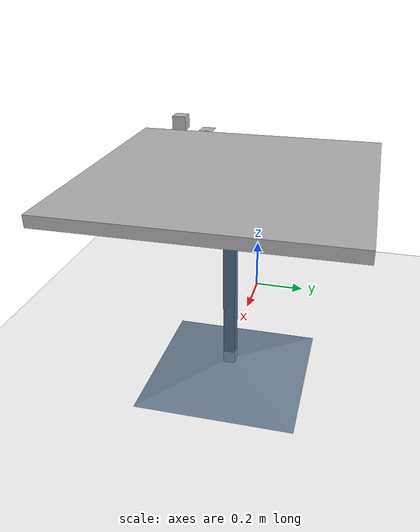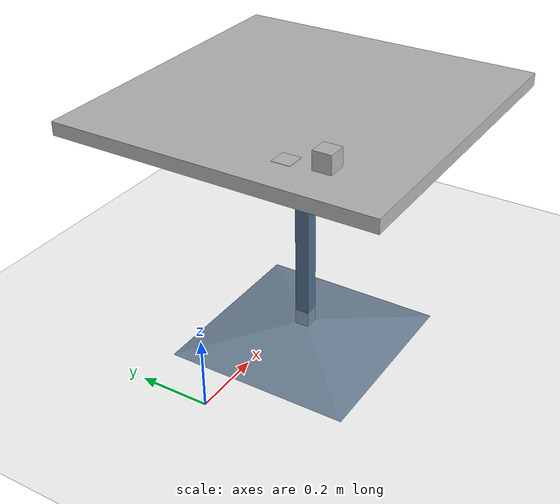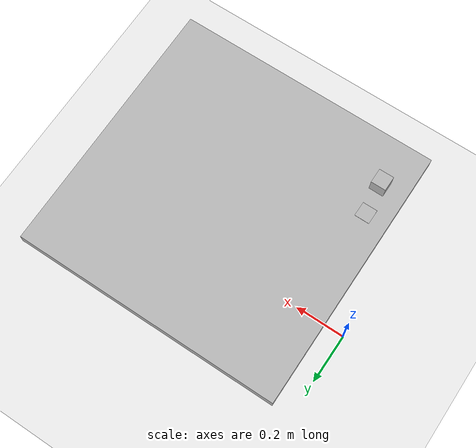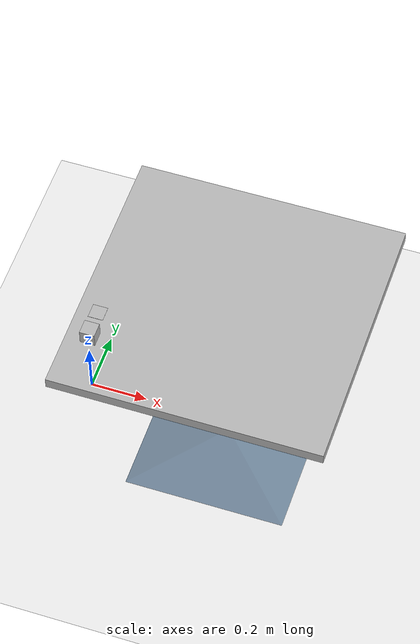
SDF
<?xml version="1.0" ?>
<sdf version="1.5">
  <world name="pepper_table_cube">
    <include>
      <uri>model://sun</uri>
    </include>
    <include>
      <uri>model://ground_plane</uri>
    </include>
    <include>
      <name>table</name>
      <uri>model://table</uri>
      <pose>0.5 0 0 0 0 0</pose>
    </include>
    <include>
      <uri>model://cube</uri>
      <pose>0.13 -0.28 0.73 0 0 0</pose>
    </include>
    <include>
      <uri>model://target</uri>
      <pose>0.12 -0.18 0.7055 0 0 0</pose>
    </include>
    <gravity>0 0 -9.81</gravity>
  </world>
</sdf>

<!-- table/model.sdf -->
<sdf version="1.5">
  <model name="table">
    <static>true</static>
    <link name="link">
      <collision name="surface">
        <pose>0 0 0.755 0 0 0</pose>
        <geometry>
          <box>
            <size>0.913 0.913 0.04</size>
          </box>
        </geometry>
      </collision>

      <collision name="column">
        <pose>0 0 0.37 0 0 0</pose>
        <geometry>
          <box>
            <size>0.042 0.042 0.74</size>
          </box>
        </geometry>
      </collision>

      <collision name="base">
        <pose>0 0 0.02 0 0 0</pose>
        <geometry>
          <box>
            <size>0.56 0.56 0.04</size>
          </box>
        </geometry>
      </collision>

      <visual name="visual">
        <pose>0 0 -0.1 0 0 0</pose>
        <geometry>
          <mesh>
            <uri>model://table/meshes/cafe_table.dae</uri>
          </mesh>
        </geometry>
      </visual>
    </link>
  </model>
</sdf>

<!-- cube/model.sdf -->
<sdf version="1.4">
<model name="cube">
    <link name="link">
      <inertial>
        <mass>1.0</mass>
        <inertia>
          <ixx>0.083</ixx>
          <ixy>0.0</ixy>
          <ixz>0.0</ixz>
          <iyy>0.083</iyy>
          <iyz>0.0</iyz>
          <izz>0.083</izz>
        </inertia>
      </inertial>
      <collision name="collision">
        <geometry>
          <box>
            <size>0.05 0.05 0.05</size>
          </box>
        </geometry>
      </collision>
      <visual name="visual">
        <geometry>
          <box>
            <size>0.05 0.05 0.05</size>
          </box>
        </geometry>
      </visual>
    </link>
  </model>
</sdf>

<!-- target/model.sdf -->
<sdf version="1.4">
<model name="target">
    <link name="link">
      <inertial>
        <mass>1.0</mass>
        <inertia>
          <ixx>0.083</ixx>
          <ixy>0.0</ixy>
          <ixz>0.0</ixz>
          <iyy>0.083</iyy>
          <iyz>0.0</iyz>
          <izz>0.083</izz>
        </inertia>
      </inertial>
      <collision name="collision">
        <geometry>
          <box>
            <size>0.05 0.05 0.001</size>
          </box>
        </geometry>
      </collision>
      <visual name="visual">
        <geometry>
          <box>
            <size>0.05 0.05 0.001</size>
          </box>
        </geometry>
        <material name="red">
          <color rgba="1.0 0.0 0.0 1.0"/>
        </material>
      </visual>
    </link>
  </model>
</sdf>
